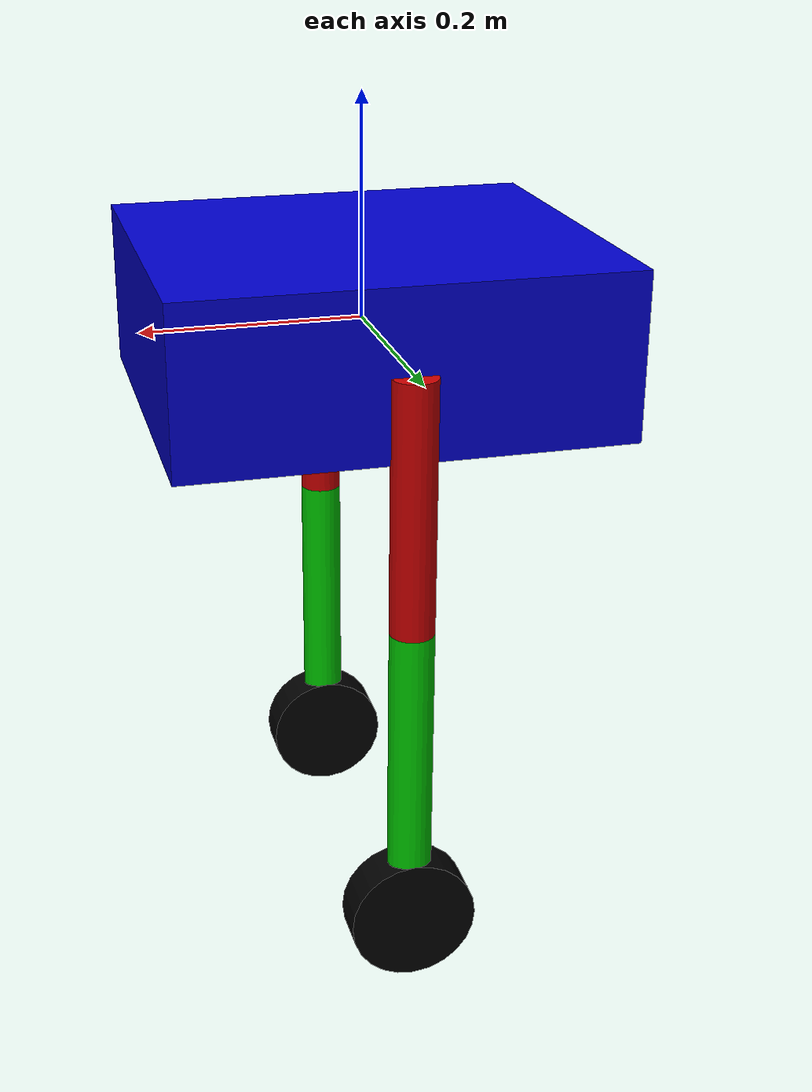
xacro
<?xml version="1.0"?>
<robot name="wheel_leg_robot" xmlns:xacro="http://www.ros.org/wiki/xacro">

  <!-- 包含基础模型 -->
  <xacro:include filename="$(find balance_bot)/urdf/wheel_leg_initial_pose.xacro" />

  <!-- 添加IMU传感器插件 -->
  <gazebo reference="base_link">
    <sensor name="imu_sensor" type="imu">
      <always_on>true</always_on>
      <update_rate>1000</update_rate>
      <!-- Gazebo内部发布IMU数据的话题，桥接会连接到这里 -->
      <topic>/imu</topic>
      <plugin filename="libgz-sim-imu-system.so" name="gz::sim::systems::Imu">
        <topic>/imu</topic>
        <noise type="gaussian">
          <mean>0.0</mean>
          <stddev>0.0002</stddev>
        </noise>
        <!-- 为了快速验证，你可以先注释掉下面详细的噪声配置，
             等传感器能工作后再来细化。 -->
      </plugin>
    </sensor>
  </gazebo>
  <!-- Legacy IMU plugin removed -->

</robot>

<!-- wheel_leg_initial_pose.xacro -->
<robot name="wheel_leg_initial_pose" xmlns:xacro="http://www.ros.org/wiki/xacro">

  <!-- 包含宏定义 -->
  <xacro:include filename="$(find balance_bot)/urdf/leg_initial_pose_module.xacro" />

  <!-- 定义机器人参数 -->
  <xacro:property name="body_length" value="0.4" />
  <xacro:property name="body_width" value="0.35" /> <!-- Width 0.35 implies half-width 0.175 -->
  <xacro:property name="body_height" value="0.15" />

  <!-- 机器人主体 -->
  <link name="base_link">
    <!-- Body Parameters as per user request:
         Mass: 15.0 kg
         CoM: 0.0 0.0 0.05 m
         Inertia (Pitch): 0.1125 kg*m^2
         Inertia (Yaw): 0.05 kg*m^2
    -->
    <visual>
      <geometry>
        <box size="${body_length} ${body_width} ${body_height}"/>
      </geometry>
      <material name="blue">
        <color rgba="0 0 0.8 1"/>
      </material>
    </visual>
    <collision>
      <geometry>
        <box size="${body_length} ${body_width} ${body_height}"/>
      </geometry>
    </collision>
    <inertial>
      <mass value="15.0"/>
      <!-- Pitch (y-axis) = 0.1125, Yaw (z-axis) = 0.05. Estimating Roll (x-axis) ~ 0.1 -->
      <inertia ixx="0.1" ixy="0.0" ixz="0.0" iyy="0.1125" iyz="0.0" izz="0.05"/>
      <!-- COM distance from hip axis is 0.05 -->
      <origin xyz="0 0 0.05" rpy="0 0 0"/>
    </inertial>
  </link>

  <!-- 添加左侧腿 -->
  <xacro:leg_initial_pose_module
    prefix="left"
    parent="base_link"
    x="${0}"
    y="${body_width/2}"
    z="0"
    mirror="false" />

  <!-- 添加右侧腿 -->
  <xacro:leg_initial_pose_module
    prefix="right"
    parent="base_link"
    x="${0}"
    y="${-body_width/2}"
    z="0"
    mirror="true" />

  <ros2_control name="GazeboSystem" type="system">
    <hardware>
      <plugin>gz_ros2_control/GazeboSimSystem</plugin>
    </hardware>
    <!-- Left Leg -->
    <joint name="left_hip_joint">
      <command_interface name="effort">
        <param name="min">-30</param>
        <param name="max">30</param>
      </command_interface>
      <state_interface name="position"/>
      <state_interface name="velocity"/>
      <state_interface name="effort"/>
    </joint>
    <joint name="left_knee_joint">
      <command_interface name="effort">
        <param name="min">-25</param>
        <param name="max">25</param>
      </command_interface>
      <state_interface name="position"/>
      <state_interface name="velocity"/>
      <state_interface name="effort"/>
    </joint>
    <joint name="left_wheel_joint">
      <command_interface name="effort">
        <param name="min">-15</param>
        <param name="max">15</param>
      </command_interface>
      <state_interface name="position"/>
      <state_interface name="velocity"/>
      <state_interface name="effort"/>
    </joint>
    <!-- Right Leg -->
    <joint name="right_hip_joint">
      <command_interface name="effort">
        <param name="min">-30</param>
        <param name="max">30</param>
      </command_interface>
      <state_interface name="position"/>
      <state_interface name="velocity"/>
      <state_interface name="effort"/>
    </joint>
    <joint name="right_knee_joint">
      <command_interface name="effort">
        <param name="min">-25</param>
        <param name="max">25</param>
      </command_interface>
      <state_interface name="position"/>
      <state_interface name="velocity"/>
      <state_interface name="effort"/>
    </joint>
    <joint name="right_wheel_joint">
      <command_interface name="effort">
        <param name="min">-15</param>
        <param name="max">15</param>
      </command_interface>
      <state_interface name="position"/>
      <state_interface name="velocity"/>
      <state_interface name="effort"/>
    </joint>
  </ros2_control>

  <!-- Gazebo插件 -->
  <gazebo reference="base_link">
    <material>Gazebo/Blue</material>
  </gazebo>

  <!-- Gazebo ROS控制插件 -->
  <gazebo>
    <plugin name="gz_ros2_control::GazeboSimROS2ControlPlugin" filename="libgz_ros2_control-system.so">
      <parameters>$(find balance_bot)/config/controllers.yaml</parameters>
    </plugin>
  </gazebo>

</robot>

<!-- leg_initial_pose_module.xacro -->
<robot xmlns:xacro="http://www.ros.org/wiki/xacro">

  <xacro:macro name="leg_initial_pose_module" params="prefix parent x y z mirror">

    <!-- 定义几何参数 -->
    <xacro:property name="thigh_length" value="0.23" />    <!-- 大腿长度 230mm -->
    <xacro:property name="shank_length" value="0.287" />   <!-- 小腿长度 287mm -->

    <xacro:property name="leg_diameter" value="0.04" />
    <xacro:property name="wheel_radius" value="0.058" />
    <xacro:property name="wheel_thickness" value="0.04" />

    <!-- 初始角度参数 -->
    <!-- 髋关节高度 0.176 => Hip: -1.55 rad, Knee: 2.48 rad -->
    <xacro:property name="initial_hip_angle" value="-1.55" />
    <xacro:property name="initial_knee_angle" value="2.48" />

    <!-- 镜像因子 -->
    <xacro:property name="mirror_factor" value="${-1 if mirror else 1}" />

    <!-- ========== 大腿 (Thigh) ========== -->
    <link name="${prefix}_thigh">
      <visual>
        <geometry>
          <cylinder radius="${leg_diameter/2}" length="${thigh_length}"/>
        </geometry>
        <material name="red">
          <color rgba="0.8 0 0 1"/>
        </material>
        <origin xyz="0 0 ${-thigh_length/2}" rpy="0 0 0"/>
      </visual>
      <collision>
        <geometry>
          <cylinder radius="${leg_diameter/2}" length="${thigh_length}"/>
        </geometry>
        <origin xyz="0 0 ${-thigh_length/2}" rpy="0 0 0"/>
      </collision>
      <inertial>
        <mass value="1.02"/> <!-- 总腿重2.047，平均分配 -->
        <inertia ixx="0.009" ixy="0.0" ixz="0.0" iyy="0.009" iyz="0.0" izz="0.001"/>
        <origin xyz="0 0 ${-thigh_length/2}" rpy="0 0 0"/>
      </inertial>
    </link>

    <!-- 大腿与机体的关节 (髋关节电机) -->
    <joint name="${prefix}_hip_joint" type="revolute">
      <parent link="${parent}"/>
      <child link="${prefix}_thigh"/>
      <origin xyz="${x} ${y} ${z}" rpy="0 0 0"/>
      <axis xyz="0 1 0"/>
      <limit lower="-3.0" upper="1.0" effort="30.0" velocity="10.0"/>
      <!-- 设置初始位置 -->
      <xacro:if value="${mirror}">
        <origin rpy="0 ${initial_hip_angle} 0" xyz="${x} ${y} ${z}"/>
      </xacro:if>
      <xacro:unless value="${mirror}">
        <origin rpy="0 ${initial_hip_angle} 0" xyz="${x} ${y} ${z}"/>
      </xacro:unless>
    </joint>

    <!-- ========== 小腿 (Shank) ========== -->
    <link name="${prefix}_shank">
      <visual>
        <geometry>
          <cylinder radius="${leg_diameter/2}" length="${shank_length}"/>
        </geometry>
        <material name="green">
          <color rgba="0 0.8 0 1"/>
        </material>
        <origin xyz="0 0 ${-shank_length/2}" rpy="0 0 0"/>
      </visual>
      <collision>
        <geometry>
          <cylinder radius="${leg_diameter/2}" length="${shank_length}"/>
        </geometry>
        <origin xyz="0 0 ${-shank_length/2}" rpy="0 0 0"/>
      </collision>
      <inertial>
        <mass value="1.027"/> <!-- 补足到总重2.047 -->
        <inertia ixx="0.009" ixy="0.0" ixz="0.0" iyy="0.009" iyz="0.0" izz="0.001"/>
        <origin xyz="0 0 ${-shank_length/2}" rpy="0 0 0"/>
      </inertial>
    </link>

    <!-- 小腿与大腿的关节 (膝关节电机) -->
    <joint name="${prefix}_knee_joint" type="revolute">
      <parent link="${prefix}_thigh"/>
      <child link="${prefix}_shank"/>
      <origin xyz="0 0 ${-thigh_length}" rpy="0 0 0"/>
      <axis xyz="0 1 0"/>
      <limit lower="0.0" upper="3.0" effort="25.0" velocity="10.0"/>
      <!-- 设置初始位置 -->
      <xacro:if value="${mirror}">
        <origin rpy="0 ${initial_knee_angle} 0" xyz="0 0 ${-thigh_length}"/>
      </xacro:if>
      <xacro:unless value="${mirror}">
        <origin rpy="0 ${initial_knee_angle} 0" xyz="0 0 ${-thigh_length}"/>
      </xacro:unless>
    </joint>

    <!-- ========== 轮子 (Wheel) ========== -->
    <link name="${prefix}_wheel">
      <visual>
        <geometry>
          <cylinder radius="${wheel_radius}" length="${wheel_thickness}"/>
        </geometry>
        <material name="black">
          <color rgba="0 0 0 1"/>
        </material>
        <origin xyz="0 0 0" rpy="${pi/2} 0 0"/>
      </visual>
      <collision>
        <geometry>
          <cylinder radius="${wheel_radius}" length="${wheel_thickness}"/>
        </geometry>
        <origin xyz="0 0 0" rpy="${pi/2} 0 0"/>
      </collision>
      <inertial>
        <mass value="0.982"/>
        <inertia ixx="0.002" ixy="0.0" ixz="0.0" iyy="0.001" iyz="0.0" izz="0.002"/>
      </inertial>
    </link>

    <!-- 轮子与腿的关节 (无刷电机) -->
    <!-- 修正轮子轴向，假设原方向错误 -->
    <joint name="${prefix}_wheel_joint" type="continuous">
      <parent link="${prefix}_shank"/>
      <child link="${prefix}_wheel"/>
      <origin xyz="0 0 ${-shank_length}" rpy="0 0 0"/>
      <axis xyz="0 1 0"/>
    </joint>

    <!-- ========== 传输定义 ========== -->

    <!-- 髋关节传输 -->
    <transmission name="${prefix}_hip_trans">
      <type>transmission_interface/SimpleTransmission</type>
      <joint name="${prefix}_hip_joint">
        <hardwareInterface>EffortJointInterface</hardwareInterface>
      </joint>
      <actuator name="${prefix}_hip_motor">
        <hardwareInterface>EffortJointInterface</hardwareInterface>
        <mechanicalReduction>1</mechanicalReduction>
      </actuator>
    </transmission>

    <!-- 膝关节传输 -->
    <transmission name="${prefix}_knee_trans">
      <type>transmission_interface/SimpleTransmission</type>
      <joint name="${prefix}_knee_joint">
        <hardwareInterface>EffortJointInterface</hardwareInterface>
      </joint>
      <actuator name="${prefix}_knee_motor">
        <hardwareInterface>EffortJointInterface</hardwareInterface>
        <mechanicalReduction>1</mechanicalReduction>
      </actuator>
    </transmission>

    <!-- 轮子关节传输 -->
    <transmission name="${prefix}_wheel_trans">
      <type>transmission_interface/SimpleTransmission</type>
      <joint name="${prefix}_wheel_joint">
        <hardwareInterface>EffortJointInterface</hardwareInterface>
      </joint>
      <actuator name="${prefix}_wheel_motor">
        <hardwareInterface>EffortJointInterface</hardwareInterface>
        <mechanicalReduction>1</mechanicalReduction>
      </actuator>
    </transmission>

    <!-- Gazebo材质 -->
    <gazebo reference="${prefix}_thigh">
      <material>Gazebo/Red</material>
    </gazebo>
    <gazebo reference="${prefix}_shank">
      <material>Gazebo/Green</material>
    </gazebo>
    <gazebo reference="${prefix}_wheel">
      <material>Gazebo/Black</material>
    </gazebo>

  </xacro:macro>

</robot>
